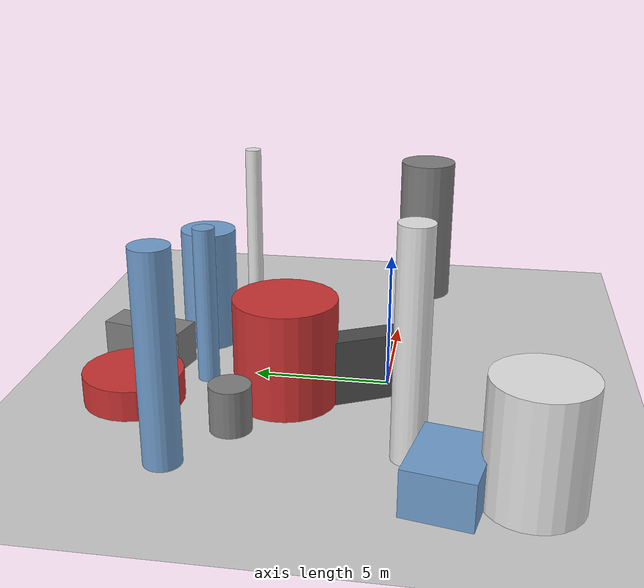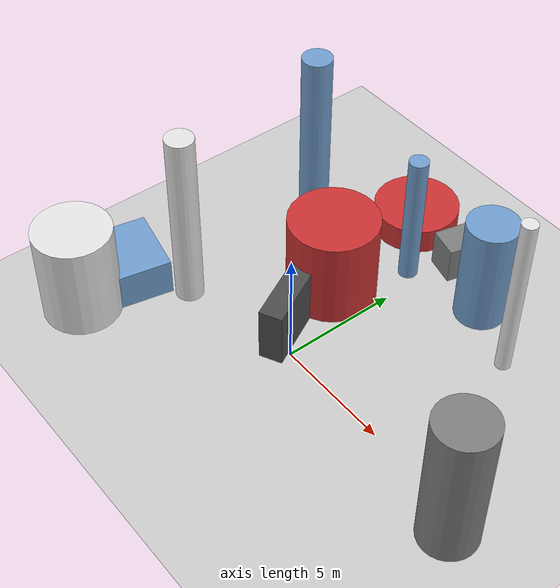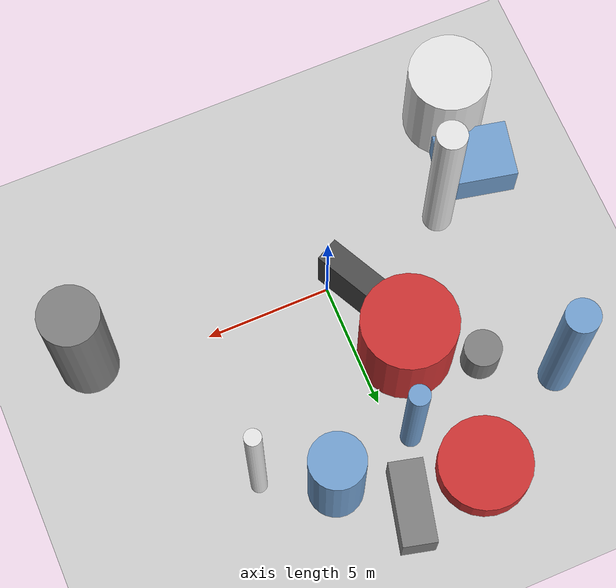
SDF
<?xml version='1.0'?>
<sdf version='1.6'>
  <world name='default'>
    <!-- Sun light -->
    <light name='sun' type='directional'>
      <cast_shadows>1</cast_shadows>
      <pose>0 0 10 0 0 0</pose>
      <diffuse>0.8 0.8 0.8 1</diffuse>
      <specular>0.2 0.2 0.2 1</specular>
      <attenuation>
        <range>1000</range>
        <constant>0.9</constant>
        <linear>0.01</linear>
        <quadratic>0.001</quadratic>
      </attenuation>
      <direction>-0.5 0.1 -0.9</direction>
    </light>

    <!-- Ground plane -->
    <model name='ground_plane'>
      <static>1</static>
      <link name='link'>
        <collision name='collision'>
          <geometry>
            <plane>
              <normal>0 0 1</normal>
              <size>100 100</size>
            </plane>
          </geometry>
          <surface>
            <contact>
              <collide_bitmask>65535</collide_bitmask>
              <ode/>
            </contact>
            <friction>
              <ode>
                <mu>100</mu>
                <mu2>50</mu2>
              </ode>
              <torsional><ode/></torsional>
            </friction>
            <bounce/>
          </surface>
          <max_contacts>10</max_contacts>
        </collision>
        <visual name='visual'>
          <cast_shadows>0</cast_shadows>
          <geometry>
            <plane>
              <normal>0 0 1</normal>
              <size>100 100</size>
            </plane>
          </geometry>
          <material>
            <script>
              <uri>file://media/materials/scripts/gazebo.material</uri>
              <n>Gazebo/Grey</n>
            </script>
          </material>
        </visual>
      </link>
    </model>

    <!-- Environment -->
    <magnetic_field>6e-06 2.3e-05 -4.2e-05</magnetic_field>
    <atmosphere type='adiabatic'/>
    <physics name='default_physics' default='0' type='ode'>
      <gravity>0 0 -9.8</gravity>
      <max_step_size>0.004</max_step_size>
      <real_time_factor>1</real_time_factor>
      <real_time_update_rate>250</real_time_update_rate>
    </physics>
    <scene>
      <ambient>0.4 0.4 0.4 1</ambient>
      <background>0.7 0.7 0.7 1</background>
      <shadows>1</shadows>
    </scene>
    <wind/>
    <spherical_coordinates>
      <surface_model>EARTH_WGS84</surface_model>
      <latitude_deg>0</latitude_deg>
      <longitude_deg>0</longitude_deg>
      <elevation>0</elevation>
      <heading_deg>0</heading_deg>
    </spherical_coordinates>

    <!-- ============ OBSTACLES (13) ============ -->
    <model name='obs_00'>
      <static>1</static>
      <link name='link'>
        <visual name='visual'>
          <geometry>
            <box>
              <size>2.9899 2.3057 1.6234</size>
            </box>
          </geometry>
          <material>
            <script>
              <n>Gazebo/Blue</n>
              <uri>file://media/materials/scripts/gazebo.material</uri>
            </script>
            <ambient>0.447 0.624 0.812 1</ambient>
          </material>
        </visual>
        <collision name='collision'>
          <geometry>
            <box>
              <size>2.9899 2.3057 1.6234</size>
            </box>
          </geometry>
          <max_contacts>10</max_contacts>
          <surface>
            <contact><ode/></contact>
            <bounce/>
            <friction>
              <ode><mu>1</mu><mu2>1</mu2></ode>
              <torsional><ode/></torsional>
            </friction>
          </surface>
        </collision>
      </link>
      <pose>-7.3790 -2.4656 0.8117 0 0 2.9352</pose>
    </model>

    <model name='obs_01'>
      <static>1</static>
      <link name='link'>
        <visual name='visual'>
          <geometry>
            <cylinder>
              <radius>0.6547</radius>
              <length>7.3371</length>
            </cylinder>
          </geometry>
          <material>
            <script>
              <n>Gazebo/Blue</n>
              <uri>file://media/materials/scripts/gazebo.material</uri>
            </script>
            <ambient>0.447 0.624 0.812 1</ambient>
          </material>
        </visual>
        <collision name='collision'>
          <geometry>
            <cylinder>
              <radius>0.6547</radius>
              <length>7.3371</length>
            </cylinder>
          </geometry>
          <max_contacts>10</max_contacts>
          <surface>
            <contact><ode/></contact>
            <bounce/>
            <friction>
              <ode><mu>1</mu><mu2>1</mu2></ode>
              <torsional><ode/></torsional>
            </friction>
          </surface>
        </collision>
      </link>
      <pose>-6.7551 6.6269 3.6686 0 0 2.3974</pose>
    </model>

    <model name='obs_02'>
      <static>1</static>
      <link name='link'>
        <visual name='visual'>
          <geometry>
            <cylinder>
              <radius>0.3197</radius>
              <length>7.3735</length>
            </cylinder>
          </geometry>
          <material>
            <script>
              <n>Gazebo/White</n>
              <uri>file://media/materials/scripts/gazebo.material</uri>
            </script>
            <ambient>0.9 0.9 0.9 1</ambient>
          </material>
        </visual>
        <collision name='collision'>
          <geometry>
            <cylinder>
              <radius>0.3197</radius>
              <length>7.3735</length>
            </cylinder>
          </geometry>
          <max_contacts>10</max_contacts>
          <surface>
            <contact><ode/></contact>
            <bounce/>
            <friction>
              <ode><mu>1</mu><mu2>1</mu2></ode>
              <torsional><ode/></torsional>
            </friction>
          </surface>
        </collision>
      </link>
      <pose>5.4220 6.1809 3.6868 0 0 2.6108</pose>
    </model>

    <model name='obs_03'>
      <static>1</static>
      <link name='link'>
        <visual name='visual'>
          <geometry>
            <cylinder>
              <radius>1.8714</radius>
              <length>3.9043</length>
            </cylinder>
          </geometry>
          <material>
            <script>
              <n>Gazebo/Red</n>
              <uri>file://media/materials/scripts/gazebo.material</uri>
            </script>
            <ambient>0.8 0.2 0.2 1</ambient>
          </material>
        </visual>
        <collision name='collision'>
          <geometry>
            <cylinder>
              <radius>1.8714</radius>
              <length>3.9043</length>
            </cylinder>
          </geometry>
          <max_contacts>10</max_contacts>
          <surface>
            <contact><ode/></contact>
            <bounce/>
            <friction>
              <ode><mu>1</mu><mu2>1</mu2></ode>
              <torsional><ode/></torsional>
            </friction>
          </surface>
        </collision>
      </link>
      <pose>-1.7828 3.5273 1.9521 0 0 2.7791</pose>
    </model>

    <model name='obs_04'>
      <static>1</static>
      <link name='link'>
        <visual name='visual'>
          <geometry>
            <cylinder>
              <radius>0.5862</radius>
              <length>7.9617</length>
            </cylinder>
          </geometry>
          <material>
            <script>
              <n>Gazebo/White</n>
              <uri>file://media/materials/scripts/gazebo.material</uri>
            </script>
            <ambient>0.9 0.9 0.9 1</ambient>
          </material>
        </visual>
        <collision name='collision'>
          <geometry>
            <cylinder>
              <radius>0.5862</radius>
              <length>7.9617</length>
            </cylinder>
          </geometry>
          <max_contacts>10</max_contacts>
          <surface>
            <contact><ode/></contact>
            <bounce/>
            <friction>
              <ode><mu>1</mu><mu2>1</mu2></ode>
              <torsional><ode/></torsional>
            </friction>
          </surface>
        </collision>
      </link>
      <pose>-5.2494 -1.1160 3.9808 0 0 1.5771</pose>
    </model>

    <model name='obs_05'>
      <static>1</static>
      <link name='link'>
        <visual name='visual'>
          <geometry>
            <cylinder>
              <radius>0.7396</radius>
              <length>1.6936</length>
            </cylinder>
          </geometry>
          <material>
            <script>
              <n>Gazebo/Grey</n>
              <uri>file://media/materials/scripts/gazebo.material</uri>
            </script>
            <ambient>0.5 0.5 0.5 1</ambient>
          </material>
        </visual>
        <collision name='collision'>
          <geometry>
            <cylinder>
              <radius>0.7396</radius>
              <length>1.6936</length>
            </cylinder>
          </geometry>
          <max_contacts>10</max_contacts>
          <surface>
            <contact><ode/></contact>
            <bounce/>
            <friction>
              <ode><mu>1</mu><mu2>1</mu2></ode>
              <torsional><ode/></torsional>
            </friction>
          </surface>
        </collision>
      </link>
      <pose>-4.3014 4.9707 0.8468 0 0 0.7054</pose>
    </model>

    <model name='obs_06'>
      <static>1</static>
      <link name='link'>
        <visual name='visual'>
          <geometry>
            <box>
              <size>3.2698 0.9816 2.4344</size>
            </box>
          </geometry>
          <material>
            <script>
              <n>Gazebo/DarkGrey</n>
              <uri>file://media/materials/scripts/gazebo.material</uri>
            </script>
            <ambient>0.3 0.3 0.3 1</ambient>
          </material>
        </visual>
        <collision name='collision'>
          <geometry>
            <box>
              <size>3.2698 0.9816 2.4344</size>
            </box>
          </geometry>
          <max_contacts>10</max_contacts>
          <surface>
            <contact><ode/></contact>
            <bounce/>
            <friction>
              <ode><mu>1</mu><mu2>1</mu2></ode>
              <torsional><ode/></torsional>
            </friction>
          </surface>
        </collision>
      </link>
      <pose>-1.0214 0.6802 1.2172 0 0 2.0419</pose>
    </model>

    <model name='obs_07'>
      <static>1</static>
      <link name='link'>
        <visual name='visual'>
          <geometry>
            <cylinder>
              <radius>0.4068</radius>
              <length>5.9388</length>
            </cylinder>
          </geometry>
          <material>
            <script>
              <n>Gazebo/Blue</n>
              <uri>file://media/materials/scripts/gazebo.material</uri>
            </script>
            <ambient>0.447 0.624 0.812 1</ambient>
          </material>
        </visual>
        <collision name='collision'>
          <geometry>
            <cylinder>
              <radius>0.4068</radius>
              <length>5.9388</length>
            </cylinder>
          </geometry>
          <max_contacts>10</max_contacts>
          <surface>
            <contact><ode/></contact>
            <bounce/>
            <friction>
              <ode><mu>1</mu><mu2>1</mu2></ode>
              <torsional><ode/></torsional>
            </friction>
          </surface>
        </collision>
      </link>
      <pose>-0.6197 6.7023 2.9694 0 0 2.1868</pose>
    </model>

    <model name='obs_08'>
      <static>1</static>
      <link name='link'>
        <visual name='visual'>
          <geometry>
            <cylinder>
              <radius>1.8258</radius>
              <length>1.1330</length>
            </cylinder>
          </geometry>
          <material>
            <script>
              <n>Gazebo/Red</n>
              <uri>file://media/materials/scripts/gazebo.material</uri>
            </script>
            <ambient>0.8 0.2 0.2 1</ambient>
          </material>
        </visual>
        <collision name='collision'>
          <geometry>
            <cylinder>
              <radius>1.8258</radius>
              <length>1.1330</length>
            </cylinder>
          </geometry>
          <max_contacts>10</max_contacts>
          <surface>
            <contact><ode/></contact>
            <bounce/>
            <friction>
              <ode><mu>1</mu><mu2>1</mu2></ode>
              <torsional><ode/></torsional>
            </friction>
          </surface>
        </collision>
      </link>
      <pose>-2.6432 8.9426 0.5665 0 0 1.9332</pose>
    </model>

    <model name='obs_09'>
      <static>1</static>
      <link name='link'>
        <visual name='visual'>
          <geometry>
            <cylinder>
              <radius>1.1653</radius>
              <length>6.0906</length>
            </cylinder>
          </geometry>
          <material>
            <script>
              <n>Gazebo/Grey</n>
              <uri>file://media/materials/scripts/gazebo.material</uri>
            </script>
            <ambient>0.5 0.5 0.5 1</ambient>
          </material>
        </visual>
        <collision name='collision'>
          <geometry>
            <cylinder>
              <radius>1.1653</radius>
              <length>6.0906</length>
            </cylinder>
          </geometry>
          <max_contacts>10</max_contacts>
          <surface>
            <contact><ode/></contact>
            <bounce/>
            <friction>
              <ode><mu>1</mu><mu2>1</mu2></ode>
              <torsional><ode/></torsional>
            </friction>
          </surface>
        </collision>
      </link>
      <pose>9.6888 -0.7664 3.0453 0 0 2.6231</pose>
    </model>

    <model name='obs_10'>
      <static>1</static>
      <link name='link'>
        <visual name='visual'>
          <geometry>
            <box>
              <size>3.2166 1.3317 1.6092</size>
            </box>
          </geometry>
          <material>
            <script>
              <n>Gazebo/Grey</n>
              <uri>file://media/materials/scripts/gazebo.material</uri>
            </script>
            <ambient>0.5 0.5 0.5 1</ambient>
          </material>
        </visual>
        <collision name='collision'>
          <geometry>
            <box>
              <size>3.2166 1.3317 1.6092</size>
            </box>
          </geometry>
          <max_contacts>10</max_contacts>
          <surface>
            <contact><ode/></contact>
            <bounce/>
            <friction>
              <ode><mu>1</mu><mu2>1</mu2></ode>
              <torsional><ode/></torsional>
            </friction>
          </surface>
        </collision>
      </link>
      <pose>0.5492 9.3254 0.8046 0 0 1.3297</pose>
    </model>

    <model name='obs_11'>
      <static>1</static>
      <link name='link'>
        <visual name='visual'>
          <geometry>
            <cylinder>
              <radius>1.6187</radius>
              <length>4.1998</length>
            </cylinder>
          </geometry>
          <material>
            <script>
              <n>Gazebo/White</n>
              <uri>file://media/materials/scripts/gazebo.material</uri>
            </script>
            <ambient>0.9 0.9 0.9 1</ambient>
          </material>
        </visual>
        <collision name='collision'>
          <geometry>
            <cylinder>
              <radius>1.6187</radius>
              <length>4.1998</length>
            </cylinder>
          </geometry>
          <max_contacts>10</max_contacts>
          <surface>
            <contact><ode/></contact>
            <bounce/>
            <friction>
              <ode><mu>1</mu><mu2>1</mu2></ode>
              <torsional><ode/></torsional>
            </friction>
          </surface>
        </collision>
      </link>
      <pose>-7.2320 -4.9999 2.0999 0 0 1.3189</pose>
    </model>

    <model name='obs_12'>
      <static>1</static>
      <link name='link'>
        <visual name='visual'>
          <geometry>
            <cylinder>
              <radius>1.0747</radius>
              <length>4.7524</length>
            </cylinder>
          </geometry>
          <material>
            <script>
              <n>Gazebo/Blue</n>
              <uri>file://media/materials/scripts/gazebo.material</uri>
            </script>
            <ambient>0.447 0.624 0.812 1</ambient>
          </material>
        </visual>
        <collision name='collision'>
          <geometry>
            <cylinder>
              <radius>1.0747</radius>
              <length>4.7524</length>
            </cylinder>
          </geometry>
          <max_contacts>10</max_contacts>
          <surface>
            <contact><ode/></contact>
            <bounce/>
            <friction>
              <ode><mu>1</mu><mu2>1</mu2></ode>
              <torsional><ode/></torsional>
            </friction>
          </surface>
        </collision>
      </link>
      <pose>2.8236 7.4823 2.3762 0 0 2.6285</pose>
    </model>

    <!-- GUI camera -->
    <gui fullscreen='0'>
      <camera name='user_camera'>
        <pose>-15 0 18 0 0.85 0.15</pose>
        <view_controller>orbit</view_controller>
        <projection_type>perspective</projection_type>
      </camera>
    </gui>
  </world>
</sdf>
